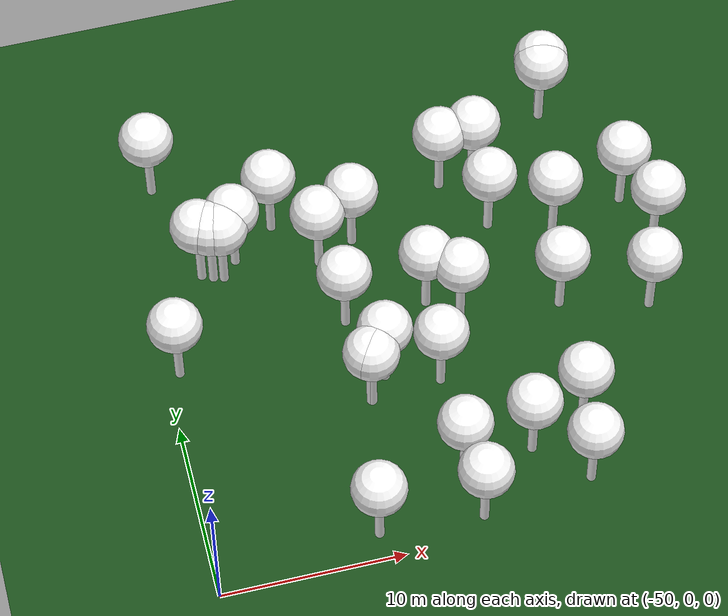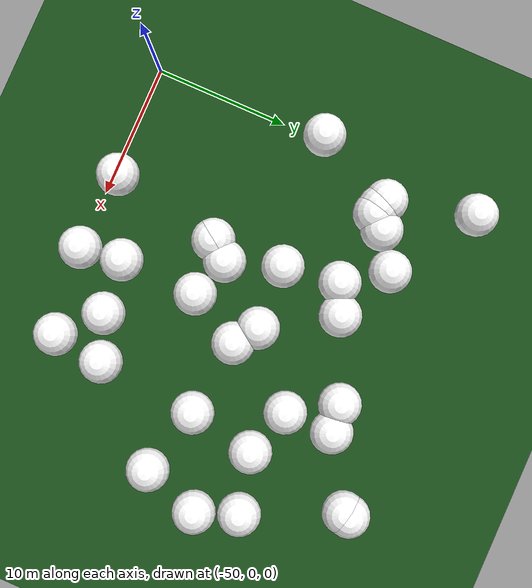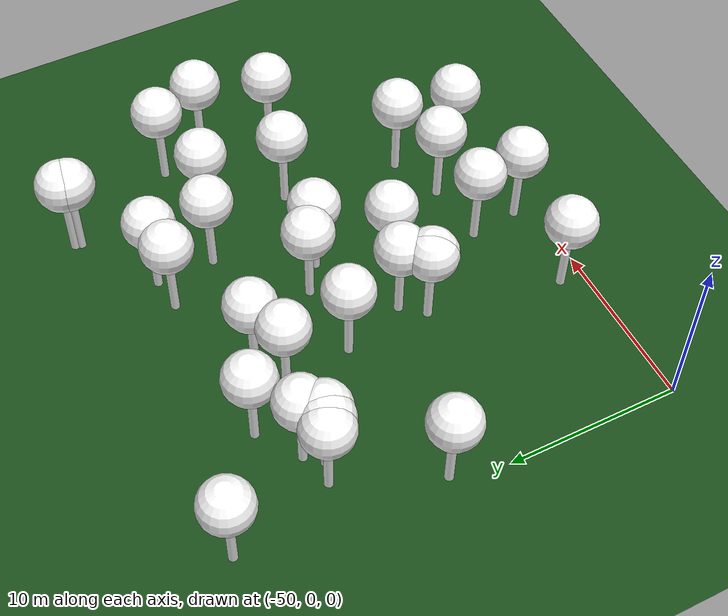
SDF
<sdf version="1.8">
 <world name="forest_world">
  <model name="tree_simple493">
   <static>1</static>
   <link name="link">
    <pose>0 0 0.1 0 -0 0</pose>
    <collision name="collision_trunk">
     <pose>0 0 2 0 -0 0</pose>
     <geometry><cylinder><radius>0.25</radius><length>4</length></cylinder></geometry>
    </collision>
    <collision name="collision_treetop">
     <pose>0 0 5.2 0 -0 0</pose>
     <geometry><sphere><radius>1.5</radius></sphere></geometry>
    </collision>
    <visual name="trunk">
     <pose>0 0 2 0 -0 0</pose>
     <geometry><cylinder><radius>0.25</radius><length>4</length></cylinder></geometry>
     <material>
      <ambient>0.5 0.5 0.5 1</ambient>
      <diffuse>1.0 1.0 1.0 1</diffuse>
      <specular>0.0 0.0 0.0 1</specular>
      <pbr>
       <metal>
        <albedo_map>../worlds/textures/tree_simple_trunk.jpg</albedo_map>
        <metalness>0.0</metalness>
        <roughness>0.8</roughness>
       </metal>
      </pbr>
     </material>
    </visual>
    <visual name="treetop">
     <pose>0 0 5.2 0 -0 0</pose>
     <geometry><sphere><radius>1.5</radius></sphere></geometry>
     <material>
      <ambient>0.5 0.5 0.5 1</ambient>
      <diffuse>1.0 1.0 1.0 1</diffuse>
      <specular>0.0 0.0 0.0 1</specular>
      <pbr>
       <metal>
        <albedo_map>../worlds/textures/tree_simple_treetop.jpg</albedo_map>
        <metalness>0.0</metalness>
        <roughness>0.9</roughness>
       </metal>
      </pbr>
     </material>
    </visual>
   </link>
   <pose>-30.9686104206 18.3944298941 0 0 -0 0</pose>
  </model>
  <model name="tree_simple476">
   <static>1</static>
   <link name="link">
    <pose>0 0 0.1 0 -0 0</pose>
    <collision name="collision_trunk">
     <pose>0 0 2 0 -0 0</pose>
     <geometry><cylinder><radius>0.25</radius><length>4</length></cylinder></geometry>
    </collision>
    <collision name="collision_treetop">
     <pose>0 0 5.2 0 -0 0</pose>
     <geometry><sphere><radius>1.5</radius></sphere></geometry>
    </collision>
    <visual name="trunk">
     <pose>0 0 2 0 -0 0</pose>
     <geometry><cylinder><radius>0.25</radius><length>4</length></cylinder></geometry>
     <material>
      <ambient>0.5 0.5 0.5 1</ambient>
      <diffuse>1.0 1.0 1.0 1</diffuse>
      <specular>0.0 0.0 0.0 1</specular>
      <pbr>
       <metal>
        <albedo_map>../worlds/textures/tree_simple_trunk.jpg</albedo_map>
        <metalness>0.0</metalness>
        <roughness>0.8</roughness>
       </metal>
      </pbr>
     </material>
    </visual>
    <visual name="treetop">
     <pose>0 0 5.2 0 -0 0</pose>
     <geometry><sphere><radius>1.5</radius></sphere></geometry>
     <material>
      <ambient>0.5 0.5 0.5 1</ambient>
      <diffuse>1.0 1.0 1.0 1</diffuse>
      <specular>0.0 0.0 0.0 1</specular>
      <pbr>
       <metal>
        <albedo_map>../worlds/textures/tree_simple_treetop.jpg</albedo_map>
        <metalness>0.0</metalness>
        <roughness>0.9</roughness>
       </metal>
      </pbr>
     </material>
    </visual>
   </link>
   <pose>-40.490555579 18.243153787 0 0 -0 0</pose>
  </model>
  <model name="tree_simple470">
   <static>1</static>
   <link name="link">
    <pose>0 0 0.1 0 -0 0</pose>
    <collision name="collision_trunk">
     <pose>0 0 2 0 -0 0</pose>
     <geometry><cylinder><radius>0.25</radius><length>4</length></cylinder></geometry>
    </collision>
    <collision name="collision_treetop">
     <pose>0 0 5.2 0 -0 0</pose>
     <geometry><sphere><radius>1.5</radius></sphere></geometry>
    </collision>
    <visual name="trunk">
     <pose>0 0 2 0 -0 0</pose>
     <geometry><cylinder><radius>0.25</radius><length>4</length></cylinder></geometry>
     <material>
      <ambient>0.5 0.5 0.5 1</ambient>
      <diffuse>1.0 1.0 1.0 1</diffuse>
      <specular>0.0 0.0 0.0 1</specular>
      <pbr>
       <metal>
        <albedo_map>../worlds/textures/tree_simple_trunk.jpg</albedo_map>
        <metalness>0.0</metalness>
        <roughness>0.8</roughness>
       </metal>
      </pbr>
     </material>
    </visual>
    <visual name="treetop">
     <pose>0 0 5.2 0 -0 0</pose>
     <geometry><sphere><radius>1.5</radius></sphere></geometry>
     <material>
      <ambient>0.5 0.5 0.5 1</ambient>
      <diffuse>1.0 1.0 1.0 1</diffuse>
      <specular>0.0 0.0 0.0 1</specular>
      <pbr>
       <metal>
        <albedo_map>../worlds/textures/tree_simple_treetop.jpg</albedo_map>
        <metalness>0.0</metalness>
        <roughness>0.9</roughness>
       </metal>
      </pbr>
     </material>
    </visual>
   </link>
   <pose>-42.5418923399 21.0598314505 0 0 -0 0</pose>
  </model>
  <model name="tree_simple467">
   <static>1</static>
   <link name="link">
    <pose>0 0 0.1 0 -0 0</pose>
    <collision name="collision_trunk">
     <pose>0 0 2 0 -0 0</pose>
     <geometry><cylinder><radius>0.25</radius><length>4</length></cylinder></geometry>
    </collision>
    <collision name="collision_treetop">
     <pose>0 0 5.2 0 -0 0</pose>
     <geometry><sphere><radius>1.5</radius></sphere></geometry>
    </collision>
    <visual name="trunk">
     <pose>0 0 2 0 -0 0</pose>
     <geometry><cylinder><radius>0.25</radius><length>4</length></cylinder></geometry>
     <material>
      <ambient>0.5 0.5 0.5 1</ambient>
      <diffuse>1.0 1.0 1.0 1</diffuse>
      <specular>0.0 0.0 0.0 1</specular>
      <pbr>
       <metal>
        <albedo_map>../worlds/textures/tree_simple_trunk.jpg</albedo_map>
        <metalness>0.0</metalness>
        <roughness>0.8</roughness>
       </metal>
      </pbr>
     </material>
    </visual>
    <visual name="treetop">
     <pose>0 0 5.2 0 -0 0</pose>
     <geometry><sphere><radius>1.5</radius></sphere></geometry>
     <material>
      <ambient>0.5 0.5 0.5 1</ambient>
      <diffuse>1.0 1.0 1.0 1</diffuse>
      <specular>0.0 0.0 0.0 1</specular>
      <pbr>
       <metal>
        <albedo_map>../worlds/textures/tree_simple_treetop.jpg</albedo_map>
        <metalness>0.0</metalness>
        <roughness>0.9</roughness>
       </metal>
      </pbr>
     </material>
    </visual>
   </link>
   <pose>-38.4435588212 19.1731926836 0 0 -0 0</pose>
  </model>
  <model name="tree_simple455">
   <static>1</static>
   <link name="link">
    <pose>0 0 0.1 0 -0 0</pose>
    <collision name="collision_trunk">
     <pose>0 0 2 0 -0 0</pose>
     <geometry><cylinder><radius>0.25</radius><length>4</length></cylinder></geometry>
    </collision>
    <collision name="collision_treetop">
     <pose>0 0 5.2 0 -0 0</pose>
     <geometry><sphere><radius>1.5</radius></sphere></geometry>
    </collision>
    <visual name="trunk">
     <pose>0 0 2 0 -0 0</pose>
     <geometry><cylinder><radius>0.25</radius><length>4</length></cylinder></geometry>
     <material>
      <ambient>0.5 0.5 0.5 1</ambient>
      <diffuse>1.0 1.0 1.0 1</diffuse>
      <specular>0.0 0.0 0.0 1</specular>
      <pbr>
       <metal>
        <albedo_map>../worlds/textures/tree_simple_trunk.jpg</albedo_map>
        <metalness>0.0</metalness>
        <roughness>0.8</roughness>
       </metal>
      </pbr>
     </material>
    </visual>
    <visual name="treetop">
     <pose>0 0 5.2 0 -0 0</pose>
     <geometry><sphere><radius>1.5</radius></sphere></geometry>
     <material>
      <ambient>0.5 0.5 0.5 1</ambient>
      <diffuse>1.0 1.0 1.0 1</diffuse>
      <specular>0.0 0.0 0.0 1</specular>
      <pbr>
       <metal>
        <albedo_map>../worlds/textures/tree_simple_treetop.jpg</albedo_map>
        <metalness>0.0</metalness>
        <roughness>0.9</roughness>
       </metal>
      </pbr>
     </material>
    </visual>
   </link>
   <pose>-32.1346913749 4.45623468988 0 0 -0 0</pose>
  </model>
  <model name="tree_simple444">
   <static>1</static>
   <link name="link">
    <pose>0 0 0.1 0 -0 0</pose>
    <collision name="collision_trunk">
     <pose>0 0 2 0 -0 0</pose>
     <geometry><cylinder><radius>0.25</radius><length>4</length></cylinder></geometry>
    </collision>
    <collision name="collision_treetop">
     <pose>0 0 5.2 0 -0 0</pose>
     <geometry><sphere><radius>1.5</radius></sphere></geometry>
    </collision>
    <visual name="trunk">
     <pose>0 0 2 0 -0 0</pose>
     <geometry><cylinder><radius>0.25</radius><length>4</length></cylinder></geometry>
     <material>
      <ambient>0.5 0.5 0.5 1</ambient>
      <diffuse>1.0 1.0 1.0 1</diffuse>
      <specular>0.0 0.0 0.0 1</specular>
      <pbr>
       <metal>
        <albedo_map>../worlds/textures/tree_simple_trunk.jpg</albedo_map>
        <metalness>0.0</metalness>
        <roughness>0.8</roughness>
       </metal>
      </pbr>
     </material>
    </visual>
    <visual name="treetop">
     <pose>0 0 5.2 0 -0 0</pose>
     <geometry><sphere><radius>1.5</radius></sphere></geometry>
     <material>
      <ambient>0.5 0.5 0.5 1</ambient>
      <diffuse>1.0 1.0 1.0 1</diffuse>
      <specular>0.0 0.0 0.0 1</specular>
      <pbr>
       <metal>
        <albedo_map>../worlds/textures/tree_simple_treetop.jpg</albedo_map>
        <metalness>0.0</metalness>
        <roughness>0.9</roughness>
       </metal>
      </pbr>
     </material>
    </visual>
   </link>
   <pose>-23.7375888222 11.4825776361 0 0 -0 0</pose>
  </model>
  <model name="tree_simple440">
   <static>1</static>
   <link name="link">
    <pose>0 0 0.1 0 -0 0</pose>
    <collision name="collision_trunk">
     <pose>0 0 2 0 -0 0</pose>
     <geometry><cylinder><radius>0.25</radius><length>4</length></cylinder></geometry>
    </collision>
    <collision name="collision_treetop">
     <pose>0 0 5.2 0 -0 0</pose>
     <geometry><sphere><radius>1.5</radius></sphere></geometry>
    </collision>
    <visual name="trunk">
     <pose>0 0 2 0 -0 0</pose>
     <geometry><cylinder><radius>0.25</radius><length>4</length></cylinder></geometry>
     <material>
      <ambient>0.5 0.5 0.5 1</ambient>
      <diffuse>1.0 1.0 1.0 1</diffuse>
      <specular>0.0 0.0 0.0 1</specular>
      <pbr>
       <metal>
        <albedo_map>../worlds/textures/tree_simple_trunk.jpg</albedo_map>
        <metalness>0.0</metalness>
        <roughness>0.8</roughness>
       </metal>
      </pbr>
     </material>
    </visual>
    <visual name="treetop">
     <pose>0 0 5.2 0 -0 0</pose>
     <geometry><sphere><radius>1.5</radius></sphere></geometry>
     <material>
      <ambient>0.5 0.5 0.5 1</ambient>
      <diffuse>1.0 1.0 1.0 1</diffuse>
      <specular>0.0 0.0 0.0 1</specular>
      <pbr>
       <metal>
        <albedo_map>../worlds/textures/tree_simple_treetop.jpg</albedo_map>
        <metalness>0.0</metalness>
        <roughness>0.9</roughness>
       </metal>
      </pbr>
     </material>
    </visual>
   </link>
   <pose>-31.0139863597 21.7755311208 0 0 -0 0</pose>
  </model>
  <model name="tree_simple437">
   <static>1</static>
   <link name="link">
    <pose>0 0 0.1 0 -0 0</pose>
    <collision name="collision_trunk">
     <pose>0 0 2 0 -0 0</pose>
     <geometry><cylinder><radius>0.25</radius><length>4</length></cylinder></geometry>
    </collision>
    <collision name="collision_treetop">
     <pose>0 0 5.2 0 -0 0</pose>
     <geometry><sphere><radius>1.5</radius></sphere></geometry>
    </collision>
    <visual name="trunk">
     <pose>0 0 2 0 -0 0</pose>
     <geometry><cylinder><radius>0.25</radius><length>4</length></cylinder></geometry>
     <material>
      <ambient>0.5 0.5 0.5 1</ambient>
      <diffuse>1.0 1.0 1.0 1</diffuse>
      <specular>0.0 0.0 0.0 1</specular>
      <pbr>
       <metal>
        <albedo_map>../worlds/textures/tree_simple_trunk.jpg</albedo_map>
        <metalness>0.0</metalness>
        <roughness>0.8</roughness>
       </metal>
      </pbr>
     </material>
    </visual>
    <visual name="treetop">
     <pose>0 0 5.2 0 -0 0</pose>
     <geometry><sphere><radius>1.5</radius></sphere></geometry>
     <material>
      <ambient>0.5 0.5 0.5 1</ambient>
      <diffuse>1.0 1.0 1.0 1</diffuse>
      <specular>0.0 0.0 0.0 1</specular>
      <pbr>
       <metal>
        <albedo_map>../worlds/textures/tree_simple_treetop.jpg</albedo_map>
        <metalness>0.0</metalness>
        <roughness>0.9</roughness>
       </metal>
      </pbr>
     </material>
    </visual>
   </link>
   <pose>-39.7170299969 9.24665194356 0 0 -0 0</pose>
  </model>
  <model name="tree_simple420">
   <static>1</static>
   <link name="link">
    <pose>0 0 0.1 0 -0 0</pose>
    <collision name="collision_trunk">
     <pose>0 0 2 0 -0 0</pose>
     <geometry><cylinder><radius>0.25</radius><length>4</length></cylinder></geometry>
    </collision>
    <collision name="collision_treetop">
     <pose>0 0 5.2 0 -0 0</pose>
     <geometry><sphere><radius>1.5</radius></sphere></geometry>
    </collision>
    <visual name="trunk">
     <pose>0 0 2 0 -0 0</pose>
     <geometry><cylinder><radius>0.25</radius><length>4</length></cylinder></geometry>
     <material>
      <ambient>0.5 0.5 0.5 1</ambient>
      <diffuse>1.0 1.0 1.0 1</diffuse>
      <specular>0.0 0.0 0.0 1</specular>
      <pbr>
       <metal>
        <albedo_map>../worlds/textures/tree_simple_trunk.jpg</albedo_map>
        <metalness>0.0</metalness>
        <roughness>0.8</roughness>
       </metal>
      </pbr>
     </material>
    </visual>
    <visual name="treetop">
     <pose>0 0 5.2 0 -0 0</pose>
     <geometry><sphere><radius>1.5</radius></sphere></geometry>
     <material>
      <ambient>0.5 0.5 0.5 1</ambient>
      <diffuse>1.0 1.0 1.0 1</diffuse>
      <specular>0.0 0.0 0.0 1</specular>
      <pbr>
       <metal>
        <albedo_map>../worlds/textures/tree_simple_treetop.jpg</albedo_map>
        <metalness>0.0</metalness>
        <roughness>0.9</roughness>
       </metal>
      </pbr>
     </material>
    </visual>
   </link>
   <pose>-46.8738530937 18.9140158148 0 0 -0 0</pose>
  </model>
  <model name="tree_simple383">
   <static>1</static>
   <link name="link">
    <pose>0 0 0.1 0 -0 0</pose>
    <collision name="collision_trunk">
     <pose>0 0 2 0 -0 0</pose>
     <geometry><cylinder><radius>0.25</radius><length>4</length></cylinder></geometry>
    </collision>
    <collision name="collision_treetop">
     <pose>0 0 5.2 0 -0 0</pose>
     <geometry><sphere><radius>1.5</radius></sphere></geometry>
    </collision>
    <visual name="trunk">
     <pose>0 0 2 0 -0 0</pose>
     <geometry><cylinder><radius>0.25</radius><length>4</length></cylinder></geometry>
     <material>
      <ambient>0.5 0.5 0.5 1</ambient>
      <diffuse>1.0 1.0 1.0 1</diffuse>
      <specular>0.0 0.0 0.0 1</specular>
      <pbr>
       <metal>
        <albedo_map>../worlds/textures/tree_simple_trunk.jpg</albedo_map>
        <metalness>0.0</metalness>
        <roughness>0.8</roughness>
       </metal>
      </pbr>
     </material>
    </visual>
    <visual name="treetop">
     <pose>0 0 5.2 0 -0 0</pose>
     <geometry><sphere><radius>1.5</radius></sphere></geometry>
     <material>
      <ambient>0.5 0.5 0.5 1</ambient>
      <diffuse>1.0 1.0 1.0 1</diffuse>
      <specular>0.0 0.0 0.0 1</specular>
      <pbr>
       <metal>
        <albedo_map>../worlds/textures/tree_simple_treetop.jpg</albedo_map>
        <metalness>0.0</metalness>
        <roughness>0.9</roughness>
       </metal>
      </pbr>
     </material>
    </visual>
   </link>
   <pose>-39.6589333601 9.20891740709 0 0 -0 0</pose>
  </model>
  <model name="tree_simple338">
   <static>1</static>
   <link name="link">
    <pose>0 0 0.1 0 -0 0</pose>
    <collision name="collision_trunk">
     <pose>0 0 2 0 -0 0</pose>
     <geometry><cylinder><radius>0.25</radius><length>4</length></cylinder></geometry>
    </collision>
    <collision name="collision_treetop">
     <pose>0 0 5.2 0 -0 0</pose>
     <geometry><sphere><radius>1.5</radius></sphere></geometry>
    </collision>
    <visual name="trunk">
     <pose>0 0 2 0 -0 0</pose>
     <geometry><cylinder><radius>0.25</radius><length>4</length></cylinder></geometry>
     <material>
      <ambient>0.5 0.5 0.5 1</ambient>
      <diffuse>1.0 1.0 1.0 1</diffuse>
      <specular>0.0 0.0 0.0 1</specular>
      <pbr>
       <metal>
        <albedo_map>../worlds/textures/tree_simple_trunk.jpg</albedo_map>
        <metalness>0.0</metalness>
        <roughness>0.8</roughness>
       </metal>
      </pbr>
     </material>
    </visual>
    <visual name="treetop">
     <pose>0 0 5.2 0 -0 0</pose>
     <geometry><sphere><radius>1.5</radius></sphere></geometry>
     <material>
      <ambient>0.5 0.5 0.5 1</ambient>
      <diffuse>1.0 1.0 1.0 1</diffuse>
      <specular>0.0 0.0 0.0 1</specular>
      <pbr>
       <metal>
        <albedo_map>../worlds/textures/tree_simple_treetop.jpg</albedo_map>
        <metalness>0.0</metalness>
        <roughness>0.9</roughness>
       </metal>
      </pbr>
     </material>
    </visual>
   </link>
   <pose>-22.4236352143 15.4465495723 0 0 -0 0</pose>
  </model>
  <model name="tree_simple333">
   <static>1</static>
   <link name="link">
    <pose>0 0 0.1 0 -0 0</pose>
    <collision name="collision_trunk">
     <pose>0 0 2 0 -0 0</pose>
     <geometry><cylinder><radius>0.25</radius><length>4</length></cylinder></geometry>
    </collision>
    <collision name="collision_treetop">
     <pose>0 0 5.2 0 -0 0</pose>
     <geometry><sphere><radius>1.5</radius></sphere></geometry>
    </collision>
    <visual name="trunk">
     <pose>0 0 2 0 -0 0</pose>
     <geometry><cylinder><radius>0.25</radius><length>4</length></cylinder></geometry>
     <material>
      <ambient>0.5 0.5 0.5 1</ambient>
      <diffuse>1.0 1.0 1.0 1</diffuse>
      <specular>0.0 0.0 0.0 1</specular>
      <pbr>
       <metal>
        <albedo_map>../worlds/textures/tree_simple_trunk.jpg</albedo_map>
        <metalness>0.0</metalness>
        <roughness>0.8</roughness>
       </metal>
      </pbr>
     </material>
    </visual>
    <visual name="treetop">
     <pose>0 0 5.2 0 -0 0</pose>
     <geometry><sphere><radius>1.5</radius></sphere></geometry>
     <material>
      <ambient>0.5 0.5 0.5 1</ambient>
      <diffuse>1.0 1.0 1.0 1</diffuse>
      <specular>0.0 0.0 0.0 1</specular>
      <pbr>
       <metal>
        <albedo_map>../worlds/textures/tree_simple_treetop.jpg</albedo_map>
        <metalness>0.0</metalness>
        <roughness>0.9</roughness>
       </metal>
      </pbr>
     </material>
    </visual>
   </link>
   <pose>-39.9457212117 14.2708629915 0 0 -0 0</pose>
  </model>
  <model name="tree_simple289">
   <static>1</static>
   <link name="link">
    <pose>0 0 0.1 0 -0 0</pose>
    <collision name="collision_trunk">
     <pose>0 0 2 0 -0 0</pose>
     <geometry><cylinder><radius>0.25</radius><length>4</length></cylinder></geometry>
    </collision>
    <collision name="collision_treetop">
     <pose>0 0 5.2 0 -0 0</pose>
     <geometry><sphere><radius>1.5</radius></sphere></geometry>
    </collision>
    <visual name="trunk">
     <pose>0 0 2 0 -0 0</pose>
     <geometry><cylinder><radius>0.25</radius><length>4</length></cylinder></geometry>
     <material>
      <ambient>0.5 0.5 0.5 1</ambient>
      <diffuse>1.0 1.0 1.0 1</diffuse>
      <specular>0.0 0.0 0.0 1</specular>
      <pbr>
       <metal>
        <albedo_map>../worlds/textures/tree_simple_trunk.jpg</albedo_map>
        <metalness>0.0</metalness>
        <roughness>0.8</roughness>
       </metal>
      </pbr>
     </material>
    </visual>
    <visual name="treetop">
     <pose>0 0 5.2 0 -0 0</pose>
     <geometry><sphere><radius>1.5</radius></sphere></geometry>
     <material>
      <ambient>0.5 0.5 0.5 1</ambient>
      <diffuse>1.0 1.0 1.0 1</diffuse>
      <specular>0.0 0.0 0.0 1</specular>
      <pbr>
       <metal>
        <albedo_map>../worlds/textures/tree_simple_treetop.jpg</albedo_map>
        <metalness>0.0</metalness>
        <roughness>0.9</roughness>
       </metal>
      </pbr>
     </material>
    </visual>
   </link>
   <pose>-35.9302757768 4.10324936235 0 0 -0 0</pose>
  </model>
  <model name="tree_simple286">
   <static>1</static>
   <link name="link">
    <pose>0 0 0.1 0 -0 0</pose>
    <collision name="collision_trunk">
     <pose>0 0 2 0 -0 0</pose>
     <geometry><cylinder><radius>0.25</radius><length>4</length></cylinder></geometry>
    </collision>
    <collision name="collision_treetop">
     <pose>0 0 5.2 0 -0 0</pose>
     <geometry><sphere><radius>1.5</radius></sphere></geometry>
    </collision>
    <visual name="trunk">
     <pose>0 0 2 0 -0 0</pose>
     <geometry><cylinder><radius>0.25</radius><length>4</length></cylinder></geometry>
     <material>
      <ambient>0.5 0.5 0.5 1</ambient>
      <diffuse>1.0 1.0 1.0 1</diffuse>
      <specular>0.0 0.0 0.0 1</specular>
      <pbr>
       <metal>
        <albedo_map>../worlds/textures/tree_simple_trunk.jpg</albedo_map>
        <metalness>0.0</metalness>
        <roughness>0.8</roughness>
       </metal>
      </pbr>
     </material>
    </visual>
    <visual name="treetop">
     <pose>0 0 5.2 0 -0 0</pose>
     <geometry><sphere><radius>1.5</radius></sphere></geometry>
     <material>
      <ambient>0.5 0.5 0.5 1</ambient>
      <diffuse>1.0 1.0 1.0 1</diffuse>
      <specular>0.0 0.0 0.0 1</specular>
      <pbr>
       <metal>
        <albedo_map>../worlds/textures/tree_simple_treetop.jpg</albedo_map>
        <metalness>0.0</metalness>
        <roughness>0.9</roughness>
       </metal>
      </pbr>
     </material>
    </visual>
   </link>
   <pose>-48.4343960976 24.9011596552 0 0 -0 0</pose>
  </model>
  <model name="tree_simple252">
   <static>1</static>
   <link name="link">
    <pose>0 0 0.1 0 -0 0</pose>
    <collision name="collision_trunk">
     <pose>0 0 2 0 -0 0</pose>
     <geometry><cylinder><radius>0.25</radius><length>4</length></cylinder></geometry>
    </collision>
    <collision name="collision_treetop">
     <pose>0 0 5.2 0 -0 0</pose>
     <geometry><sphere><radius>1.5</radius></sphere></geometry>
    </collision>
    <visual name="trunk">
     <pose>0 0 2 0 -0 0</pose>
     <geometry><cylinder><radius>0.25</radius><length>4</length></cylinder></geometry>
     <material>
      <ambient>0.5 0.5 0.5 1</ambient>
      <diffuse>1.0 1.0 1.0 1</diffuse>
      <specular>0.0 0.0 0.0 1</specular>
      <pbr>
       <metal>
        <albedo_map>../worlds/textures/tree_simple_trunk.jpg</albedo_map>
        <metalness>0.0</metalness>
        <roughness>0.8</roughness>
       </metal>
      </pbr>
     </material>
    </visual>
    <visual name="treetop">
     <pose>0 0 5.2 0 -0 0</pose>
     <geometry><sphere><radius>1.5</radius></sphere></geometry>
     <material>
      <ambient>0.5 0.5 0.5 1</ambient>
      <diffuse>1.0 1.0 1.0 1</diffuse>
      <specular>0.0 0.0 0.0 1</specular>
      <pbr>
       <metal>
        <albedo_map>../worlds/textures/tree_simple_treetop.jpg</albedo_map>
        <metalness>0.0</metalness>
        <roughness>0.9</roughness>
       </metal>
      </pbr>
     </material>
    </visual>
   </link>
   <pose>-49.2857495086 13.2768548842 0 0 -0 0</pose>
  </model>
  <model name="tree_simple231">
   <static>1</static>
   <link name="link">
    <pose>0 0 0.1 0 -0 0</pose>
    <collision name="collision_trunk">
     <pose>0 0 2 0 -0 0</pose>
     <geometry><cylinder><radius>0.25</radius><length>4</length></cylinder></geometry>
    </collision>
    <collision name="collision_treetop">
     <pose>0 0 5.2 0 -0 0</pose>
     <geometry><sphere><radius>1.5</radius></sphere></geometry>
    </collision>
    <visual name="trunk">
     <pose>0 0 2 0 -0 0</pose>
     <geometry><cylinder><radius>0.25</radius><length>4</length></cylinder></geometry>
     <material>
      <ambient>0.5 0.5 0.5 1</ambient>
      <diffuse>1.0 1.0 1.0 1</diffuse>
      <specular>0.0 0.0 0.0 1</specular>
      <pbr>
       <metal>
        <albedo_map>../worlds/textures/tree_simple_trunk.jpg</albedo_map>
        <metalness>0.0</metalness>
        <roughness>0.8</roughness>
       </metal>
      </pbr>
     </material>
    </visual>
    <visual name="treetop">
     <pose>0 0 5.2 0 -0 0</pose>
     <geometry><sphere><radius>1.5</radius></sphere></geometry>
     <material>
      <ambient>0.5 0.5 0.5 1</ambient>
      <diffuse>1.0 1.0 1.0 1</diffuse>
      <specular>0.0 0.0 0.0 1</specular>
      <pbr>
       <metal>
        <albedo_map>../worlds/textures/tree_simple_treetop.jpg</albedo_map>
        <metalness>0.0</metalness>
        <roughness>0.9</roughness>
       </metal>
      </pbr>
     </material>
    </visual>
   </link>
   <pose>-35.8338732543 9.59486776234 0 0 -0 0</pose>
  </model>
  <model name="tree_simple228">
   <static>1</static>
   <link name="link">
    <pose>0 0 0.1 0 -0 0</pose>
    <collision name="collision_trunk">
     <pose>0 0 2 0 -0 0</pose>
     <geometry><cylinder><radius>0.25</radius><length>4</length></cylinder></geometry>
    </collision>
    <collision name="collision_treetop">
     <pose>0 0 5.2 0 -0 0</pose>
     <geometry><sphere><radius>1.5</radius></sphere></geometry>
    </collision>
    <visual name="trunk">
     <pose>0 0 2 0 -0 0</pose>
     <geometry><cylinder><radius>0.25</radius><length>4</length></cylinder></geometry>
     <material>
      <ambient>0.5 0.5 0.5 1</ambient>
      <diffuse>1.0 1.0 1.0 1</diffuse>
      <specular>0.0 0.0 0.0 1</specular>
      <pbr>
       <metal>
        <albedo_map>../worlds/textures/tree_simple_trunk.jpg</albedo_map>
        <metalness>0.0</metalness>
        <roughness>0.8</roughness>
       </metal>
      </pbr>
     </material>
    </visual>
    <visual name="treetop">
     <pose>0 0 5.2 0 -0 0</pose>
     <geometry><sphere><radius>1.5</radius></sphere></geometry>
     <material>
      <ambient>0.5 0.5 0.5 1</ambient>
      <diffuse>1.0 1.0 1.0 1</diffuse>
      <specular>0.0 0.0 0.0 1</specular>
      <pbr>
       <metal>
        <albedo_map>../worlds/textures/tree_simple_treetop.jpg</albedo_map>
        <metalness>0.0</metalness>
        <roughness>0.9</roughness>
       </metal>
      </pbr>
     </material>
    </visual>
   </link>
   <pose>-28.4416918888 12.679152397 0 0 -0 0</pose>
  </model>
  <model name="tree_simple218">
   <static>1</static>
   <link name="link">
    <pose>0 0 0.1 0 -0 0</pose>
    <collision name="collision_trunk">
     <pose>0 0 2 0 -0 0</pose>
     <geometry><cylinder><radius>0.25</radius><length>4</length></cylinder></geometry>
    </collision>
    <collision name="collision_treetop">
     <pose>0 0 5.2 0 -0 0</pose>
     <geometry><sphere><radius>1.5</radius></sphere></geometry>
    </collision>
    <visual name="trunk">
     <pose>0 0 2 0 -0 0</pose>
     <geometry><cylinder><radius>0.25</radius><length>4</length></cylinder></geometry>
     <material>
      <ambient>0.5 0.5 0.5 1</ambient>
      <diffuse>1.0 1.0 1.0 1</diffuse>
      <specular>0.0 0.0 0.0 1</specular>
      <pbr>
       <metal>
        <albedo_map>../worlds/textures/tree_simple_trunk.jpg</albedo_map>
        <metalness>0.0</metalness>
        <roughness>0.8</roughness>
       </metal>
      </pbr>
     </material>
    </visual>
    <visual name="treetop">
     <pose>0 0 5.2 0 -0 0</pose>
     <geometry><sphere><radius>1.5</radius></sphere></geometry>
     <material>
      <ambient>0.5 0.5 0.5 1</ambient>
      <diffuse>1.0 1.0 1.0 1</diffuse>
      <specular>0.0 0.0 0.0 1</specular>
      <pbr>
       <metal>
        <albedo_map>../worlds/textures/tree_simple_treetop.jpg</albedo_map>
        <metalness>0.0</metalness>
        <roughness>0.9</roughness>
       </metal>
      </pbr>
     </material>
    </visual>
   </link>
   <pose>-35.4441673734 14.4296379782 0 0 -0 0</pose>
  </model>
  <model name="tree_simple209">
   <static>1</static>
   <link name="link">
    <pose>0 0 0.1 0 -0 0</pose>
    <collision name="collision_trunk">
     <pose>0 0 2 0 -0 0</pose>
     <geometry><cylinder><radius>0.25</radius><length>4</length></cylinder></geometry>
    </collision>
    <collision name="collision_treetop">
     <pose>0 0 5.2 0 -0 0</pose>
     <geometry><sphere><radius>1.5</radius></sphere></geometry>
    </collision>
    <visual name="trunk">
     <pose>0 0 2 0 -0 0</pose>
     <geometry><cylinder><radius>0.25</radius><length>4</length></cylinder></geometry>
     <material>
      <ambient>0.5 0.5 0.5 1</ambient>
      <diffuse>1.0 1.0 1.0 1</diffuse>
      <specular>0.0 0.0 0.0 1</specular>
      <pbr>
       <metal>
        <albedo_map>../worlds/textures/tree_simple_trunk.jpg</albedo_map>
        <metalness>0.0</metalness>
        <roughness>0.8</roughness>
       </metal>
      </pbr>
     </material>
    </visual>
    <visual name="treetop">
     <pose>0 0 5.2 0 -0 0</pose>
     <geometry><sphere><radius>1.5</radius></sphere></geometry>
     <material>
      <ambient>0.5 0.5 0.5 1</ambient>
      <diffuse>1.0 1.0 1.0 1</diffuse>
      <specular>0.0 0.0 0.0 1</specular>
      <pbr>
       <metal>
        <albedo_map>../worlds/textures/tree_simple_treetop.jpg</albedo_map>
        <metalness>0.0</metalness>
        <roughness>0.9</roughness>
       </metal>
      </pbr>
     </material>
    </visual>
   </link>
   <pose>-33.8233046725 13.2827932197 0 0 -0 0</pose>
  </model>
  <model name="tree_simple199">
   <static>1</static>
   <link name="link">
    <pose>0 0 0.1 0 -0 0</pose>
    <collision name="collision_trunk">
     <pose>0 0 2 0 -0 0</pose>
     <geometry><cylinder><radius>0.25</radius><length>4</length></cylinder></geometry>
    </collision>
    <collision name="collision_treetop">
     <pose>0 0 5.2 0 -0 0</pose>
     <geometry><sphere><radius>1.5</radius></sphere></geometry>
    </collision>
    <visual name="trunk">
     <pose>0 0 2 0 -0 0</pose>
     <geometry><cylinder><radius>0.25</radius><length>4</length></cylinder></geometry>
     <material>
      <ambient>0.5 0.5 0.5 1</ambient>
      <diffuse>1.0 1.0 1.0 1</diffuse>
      <specular>0.0 0.0 0.0 1</specular>
      <pbr>
       <metal>
        <albedo_map>../worlds/textures/tree_simple_trunk.jpg</albedo_map>
        <metalness>0.0</metalness>
        <roughness>0.8</roughness>
       </metal>
      </pbr>
     </material>
    </visual>
    <visual name="treetop">
     <pose>0 0 5.2 0 -0 0</pose>
     <geometry><sphere><radius>1.5</radius></sphere></geometry>
     <material>
      <ambient>0.5 0.5 0.5 1</ambient>
      <diffuse>1.0 1.0 1.0 1</diffuse>
      <specular>0.0 0.0 0.0 1</specular>
      <pbr>
       <metal>
        <albedo_map>../worlds/textures/tree_simple_treetop.jpg</albedo_map>
        <metalness>0.0</metalness>
        <roughness>0.9</roughness>
       </metal>
      </pbr>
     </material>
    </visual>
   </link>
   <pose>-38.6601694544 10.5136228042 0 0 -0 0</pose>
  </model>
  <model name="tree_simple186">
   <static>1</static>
   <link name="link">
    <pose>0 0 0.1 0 -0 0</pose>
    <collision name="collision_trunk">
     <pose>0 0 2 0 -0 0</pose>
     <geometry><cylinder><radius>0.25</radius><length>4</length></cylinder></geometry>
    </collision>
    <collision name="collision_treetop">
     <pose>0 0 5.2 0 -0 0</pose>
     <geometry><sphere><radius>1.5</radius></sphere></geometry>
    </collision>
    <visual name="trunk">
     <pose>0 0 2 0 -0 0</pose>
     <geometry><cylinder><radius>0.25</radius><length>4</length></cylinder></geometry>
     <material>
      <ambient>0.5 0.5 0.5 1</ambient>
      <diffuse>1.0 1.0 1.0 1</diffuse>
      <specular>0.0 0.0 0.0 1</specular>
      <pbr>
       <metal>
        <albedo_map>../worlds/textures/tree_simple_trunk.jpg</albedo_map>
        <metalness>0.0</metalness>
        <roughness>0.8</roughness>
       </metal>
      </pbr>
     </material>
    </visual>
    <visual name="treetop">
     <pose>0 0 5.2 0 -0 0</pose>
     <geometry><sphere><radius>1.5</radius></sphere></geometry>
     <material>
      <ambient>0.5 0.5 0.5 1</ambient>
      <diffuse>1.0 1.0 1.0 1</diffuse>
      <specular>0.0 0.0 0.0 1</specular>
      <pbr>
       <metal>
        <albedo_map>../worlds/textures/tree_simple_treetop.jpg</albedo_map>
        <metalness>0.0</metalness>
        <roughness>0.9</roughness>
       </metal>
      </pbr>
     </material>
    </visual>
   </link>
   <pose>-26.4394079644 24.666728782 0 0 -0 0</pose>
  </model>
  <model name="tree_simple174">
   <static>1</static>
   <link name="link">
    <pose>0 0 0.1 0 -0 0</pose>
    <collision name="collision_trunk">
     <pose>0 0 2 0 -0 0</pose>
     <geometry><cylinder><radius>0.25</radius><length>4</length></cylinder></geometry>
    </collision>
    <collision name="collision_treetop">
     <pose>0 0 5.2 0 -0 0</pose>
     <geometry><sphere><radius>1.5</radius></sphere></geometry>
    </collision>
    <visual name="trunk">
     <pose>0 0 2 0 -0 0</pose>
     <geometry><cylinder><radius>0.25</radius><length>4</length></cylinder></geometry>
     <material>
      <ambient>0.5 0.5 0.5 1</ambient>
      <diffuse>1.0 1.0 1.0 1</diffuse>
      <specular>0.0 0.0 0.0 1</specular>
      <pbr>
       <metal>
        <albedo_map>../worlds/textures/tree_simple_trunk.jpg</albedo_map>
        <metalness>0.0</metalness>
        <roughness>0.8</roughness>
       </metal>
      </pbr>
     </material>
    </visual>
    <visual name="treetop">
     <pose>0 0 5.2 0 -0 0</pose>
     <geometry><sphere><radius>1.5</radius></sphere></geometry>
     <material>
      <ambient>0.5 0.5 0.5 1</ambient>
      <diffuse>1.0 1.0 1.0 1</diffuse>
      <specular>0.0 0.0 0.0 1</specular>
      <pbr>
       <metal>
        <albedo_map>../worlds/textures/tree_simple_treetop.jpg</albedo_map>
        <metalness>0.0</metalness>
        <roughness>0.9</roughness>
       </metal>
      </pbr>
     </material>
    </visual>
   </link>
   <pose>-26.363349587 25.0273342245 0 0 -0 0</pose>
  </model>
  <model name="tree_simple162">
   <static>1</static>
   <link name="link">
    <pose>0 0 0.1 0 -0 0</pose>
    <collision name="collision_trunk">
     <pose>0 0 2 0 -0 0</pose>
     <geometry><cylinder><radius>0.25</radius><length>4</length></cylinder></geometry>
    </collision>
    <collision name="collision_treetop">
     <pose>0 0 5.2 0 -0 0</pose>
     <geometry><sphere><radius>1.5</radius></sphere></geometry>
    </collision>
    <visual name="trunk">
     <pose>0 0 2 0 -0 0</pose>
     <geometry><cylinder><radius>0.25</radius><length>4</length></cylinder></geometry>
     <material>
      <ambient>0.5 0.5 0.5 1</ambient>
      <diffuse>1.0 1.0 1.0 1</diffuse>
      <specular>0.0 0.0 0.0 1</specular>
      <pbr>
       <metal>
        <albedo_map>../worlds/textures/tree_simple_trunk.jpg</albedo_map>
        <metalness>0.0</metalness>
        <roughness>0.8</roughness>
       </metal>
      </pbr>
     </material>
    </visual>
    <visual name="treetop">
     <pose>0 0 5.2 0 -0 0</pose>
     <geometry><sphere><radius>1.5</radius></sphere></geometry>
     <material>
      <ambient>0.5 0.5 0.5 1</ambient>
      <diffuse>1.0 1.0 1.0 1</diffuse>
      <specular>0.0 0.0 0.0 1</specular>
      <pbr>
       <metal>
        <albedo_map>../worlds/textures/tree_simple_treetop.jpg</albedo_map>
        <metalness>0.0</metalness>
        <roughness>0.9</roughness>
       </metal>
      </pbr>
     </material>
    </visual>
   </link>
   <pose>-29.0785466271 5.63251358266 0 0 -0 0</pose>
  </model>
  <model name="tree_simple135">
   <static>1</static>
   <link name="link">
    <pose>0 0 0.1 0 -0 0</pose>
    <collision name="collision_trunk">
     <pose>0 0 2 0 -0 0</pose>
     <geometry><cylinder><radius>0.25</radius><length>4</length></cylinder></geometry>
    </collision>
    <collision name="collision_treetop">
     <pose>0 0 5.2 0 -0 0</pose>
     <geometry><sphere><radius>1.5</radius></sphere></geometry>
    </collision>
    <visual name="trunk">
     <pose>0 0 2 0 -0 0</pose>
     <geometry><cylinder><radius>0.25</radius><length>4</length></cylinder></geometry>
     <material>
      <ambient>0.5 0.5 0.5 1</ambient>
      <diffuse>1.0 1.0 1.0 1</diffuse>
      <specular>0.0 0.0 0.0 1</specular>
      <pbr>
       <metal>
        <albedo_map>../worlds/textures/tree_simple_trunk.jpg</albedo_map>
        <metalness>0.0</metalness>
        <roughness>0.8</roughness>
       </metal>
      </pbr>
     </material>
    </visual>
    <visual name="treetop">
     <pose>0 0 5.2 0 -0 0</pose>
     <geometry><sphere><radius>1.5</radius></sphere></geometry>
     <material>
      <ambient>0.5 0.5 0.5 1</ambient>
      <diffuse>1.0 1.0 1.0 1</diffuse>
      <specular>0.0 0.0 0.0 1</specular>
      <pbr>
       <metal>
        <albedo_map>../worlds/textures/tree_simple_treetop.jpg</albedo_map>
        <metalness>0.0</metalness>
        <roughness>0.9</roughness>
       </metal>
      </pbr>
     </material>
    </visual>
   </link>
   <pose>-29.5483415339 2.06641345063 0 0 -0 0</pose>
  </model>
  <model name="tree_simple127">
   <static>1</static>
   <link name="link">
    <pose>0 0 0.1 0 -0 0</pose>
    <collision name="collision_trunk">
     <pose>0 0 2 0 -0 0</pose>
     <geometry><cylinder><radius>0.25</radius><length>4</length></cylinder></geometry>
    </collision>
    <collision name="collision_treetop">
     <pose>0 0 5.2 0 -0 0</pose>
     <geometry><sphere><radius>1.5</radius></sphere></geometry>
    </collision>
    <visual name="trunk">
     <pose>0 0 2 0 -0 0</pose>
     <geometry><cylinder><radius>0.25</radius><length>4</length></cylinder></geometry>
     <material>
      <ambient>0.5 0.5 0.5 1</ambient>
      <diffuse>1.0 1.0 1.0 1</diffuse>
      <specular>0.0 0.0 0.0 1</specular>
      <pbr>
       <metal>
        <albedo_map>../worlds/textures/tree_simple_trunk.jpg</albedo_map>
        <metalness>0.0</metalness>
        <roughness>0.8</roughness>
       </metal>
      </pbr>
     </material>
    </visual>
    <visual name="treetop">
     <pose>0 0 5.2 0 -0 0</pose>
     <geometry><sphere><radius>1.5</radius></sphere></geometry>
     <material>
      <ambient>0.5 0.5 0.5 1</ambient>
      <diffuse>1.0 1.0 1.0 1</diffuse>
      <specular>0.0 0.0 0.0 1</specular>
      <pbr>
       <metal>
        <albedo_map>../worlds/textures/tree_simple_treetop.jpg</albedo_map>
        <metalness>0.0</metalness>
        <roughness>0.9</roughness>
       </metal>
      </pbr>
     </material>
    </visual>
   </link>
   <pose>-45.7202624904 18.511982554 0 0 -0 0</pose>
  </model>
  <model name="tree_simple122">
   <static>1</static>
   <link name="link">
    <pose>0 0 0.1 0 -0 0</pose>
    <collision name="collision_trunk">
     <pose>0 0 2 0 -0 0</pose>
     <geometry><cylinder><radius>0.25</radius><length>4</length></cylinder></geometry>
    </collision>
    <collision name="collision_treetop">
     <pose>0 0 5.2 0 -0 0</pose>
     <geometry><sphere><radius>1.5</radius></sphere></geometry>
    </collision>
    <visual name="trunk">
     <pose>0 0 2 0 -0 0</pose>
     <geometry><cylinder><radius>0.25</radius><length>4</length></cylinder></geometry>
     <material>
      <ambient>0.5 0.5 0.5 1</ambient>
      <diffuse>1.0 1.0 1.0 1</diffuse>
      <specular>0.0 0.0 0.0 1</specular>
      <pbr>
       <metal>
        <albedo_map>../worlds/textures/tree_simple_trunk.jpg</albedo_map>
        <metalness>0.0</metalness>
        <roughness>0.8</roughness>
       </metal>
      </pbr>
     </material>
    </visual>
    <visual name="treetop">
     <pose>0 0 5.2 0 -0 0</pose>
     <geometry><sphere><radius>1.5</radius></sphere></geometry>
     <material>
      <ambient>0.5 0.5 0.5 1</ambient>
      <diffuse>1.0 1.0 1.0 1</diffuse>
      <specular>0.0 0.0 0.0 1</specular>
      <pbr>
       <metal>
        <albedo_map>../worlds/textures/tree_simple_treetop.jpg</albedo_map>
        <metalness>0.0</metalness>
        <roughness>0.9</roughness>
       </metal>
      </pbr>
     </material>
    </visual>
   </link>
   <pose>-44.9070413792 19.4157710588 0 0 -0 0</pose>
  </model>
  <model name="tree_simple119">
   <static>1</static>
   <link name="link">
    <pose>0 0 0.1 0 -0 0</pose>
    <collision name="collision_trunk">
     <pose>0 0 2 0 -0 0</pose>
     <geometry><cylinder><radius>0.25</radius><length>4</length></cylinder></geometry>
    </collision>
    <collision name="collision_treetop">
     <pose>0 0 5.2 0 -0 0</pose>
     <geometry><sphere><radius>1.5</radius></sphere></geometry>
    </collision>
    <visual name="trunk">
     <pose>0 0 2 0 -0 0</pose>
     <geometry><cylinder><radius>0.25</radius><length>4</length></cylinder></geometry>
     <material>
      <ambient>0.5 0.5 0.5 1</ambient>
      <diffuse>1.0 1.0 1.0 1</diffuse>
      <specular>0.0 0.0 0.0 1</specular>
      <pbr>
       <metal>
        <albedo_map>../worlds/textures/tree_simple_trunk.jpg</albedo_map>
        <metalness>0.0</metalness>
        <roughness>0.8</roughness>
       </metal>
      </pbr>
     </material>
    </visual>
    <visual name="treetop">
     <pose>0 0 5.2 0 -0 0</pose>
     <geometry><sphere><radius>1.5</radius></sphere></geometry>
     <material>
      <ambient>0.5 0.5 0.5 1</ambient>
      <diffuse>1.0 1.0 1.0 1</diffuse>
      <specular>0.0 0.0 0.0 1</specular>
      <pbr>
       <metal>
        <albedo_map>../worlds/textures/tree_simple_treetop.jpg</albedo_map>
        <metalness>0.0</metalness>
        <roughness>0.9</roughness>
       </metal>
      </pbr>
     </material>
    </visual>
   </link>
   <pose>-27.5998375986 17.3076325805 0 0 -0 0</pose>
  </model>
  <model name="tree_simple117">
   <static>1</static>
   <link name="link">
    <pose>0 0 0.1 0 -0 0</pose>
    <collision name="collision_trunk">
     <pose>0 0 2 0 -0 0</pose>
     <geometry><cylinder><radius>0.25</radius><length>4</length></cylinder></geometry>
    </collision>
    <collision name="collision_treetop">
     <pose>0 0 5.2 0 -0 0</pose>
     <geometry><sphere><radius>1.5</radius></sphere></geometry>
    </collision>
    <visual name="trunk">
     <pose>0 0 2 0 -0 0</pose>
     <geometry><cylinder><radius>0.25</radius><length>4</length></cylinder></geometry>
     <material>
      <ambient>0.5 0.5 0.5 1</ambient>
      <diffuse>1.0 1.0 1.0 1</diffuse>
      <specular>0.0 0.0 0.0 1</specular>
      <pbr>
       <metal>
        <albedo_map>../worlds/textures/tree_simple_trunk.jpg</albedo_map>
        <metalness>0.0</metalness>
        <roughness>0.8</roughness>
       </metal>
      </pbr>
     </material>
    </visual>
    <visual name="treetop">
     <pose>0 0 5.2 0 -0 0</pose>
     <geometry><sphere><radius>1.5</radius></sphere></geometry>
     <material>
      <ambient>0.5 0.5 0.5 1</ambient>
      <diffuse>1.0 1.0 1.0 1</diffuse>
      <specular>0.0 0.0 0.0 1</specular>
      <pbr>
       <metal>
        <albedo_map>../worlds/textures/tree_simple_treetop.jpg</albedo_map>
        <metalness>0.0</metalness>
        <roughness>0.9</roughness>
       </metal>
      </pbr>
     </material>
    </visual>
   </link>
   <pose>-46.2827238601 18.6501285005 0 0 -0 0</pose>
  </model>
  <model name="tree_simple105">
   <static>1</static>
   <link name="link">
    <pose>0 0 0.1 0 -0 0</pose>
    <collision name="collision_trunk">
     <pose>0 0 2 0 -0 0</pose>
     <geometry><cylinder><radius>0.25</radius><length>4</length></cylinder></geometry>
    </collision>
    <collision name="collision_treetop">
     <pose>0 0 5.2 0 -0 0</pose>
     <geometry><sphere><radius>1.5</radius></sphere></geometry>
    </collision>
    <visual name="trunk">
     <pose>0 0 2 0 -0 0</pose>
     <geometry><cylinder><radius>0.25</radius><length>4</length></cylinder></geometry>
     <material>
      <ambient>0.5 0.5 0.5 1</ambient>
      <diffuse>1.0 1.0 1.0 1</diffuse>
      <specular>0.0 0.0 0.0 1</specular>
      <pbr>
       <metal>
        <albedo_map>../worlds/textures/tree_simple_trunk.jpg</albedo_map>
        <metalness>0.0</metalness>
        <roughness>0.8</roughness>
       </metal>
      </pbr>
     </material>
    </visual>
    <visual name="treetop">
     <pose>0 0 5.2 0 -0 0</pose>
     <geometry><sphere><radius>1.5</radius></sphere></geometry>
     <material>
      <ambient>0.5 0.5 0.5 1</ambient>
      <diffuse>1.0 1.0 1.0 1</diffuse>
      <specular>0.0 0.0 0.0 1</specular>
      <pbr>
       <metal>
        <albedo_map>../worlds/textures/tree_simple_treetop.jpg</albedo_map>
        <metalness>0.0</metalness>
        <roughness>0.9</roughness>
       </metal>
      </pbr>
     </material>
    </visual>
   </link>
   <pose>-41.1351668554 1.47782508111 0 0 -0 0</pose>
  </model>
  <model name="tree_simple103">
   <static>1</static>
   <link name="link">
    <pose>0 0 0.1 0 -0 0</pose>
    <collision name="collision_trunk">
     <pose>0 0 2 0 -0 0</pose>
     <geometry><cylinder><radius>0.25</radius><length>4</length></cylinder></geometry>
    </collision>
    <collision name="collision_treetop">
     <pose>0 0 5.2 0 -0 0</pose>
     <geometry><sphere><radius>1.5</radius></sphere></geometry>
    </collision>
    <visual name="trunk">
     <pose>0 0 2 0 -0 0</pose>
     <geometry><cylinder><radius>0.25</radius><length>4</length></cylinder></geometry>
     <material>
      <ambient>0.5 0.5 0.5 1</ambient>
      <diffuse>1.0 1.0 1.0 1</diffuse>
      <specular>0.0 0.0 0.0 1</specular>
      <pbr>
       <metal>
        <albedo_map>../worlds/textures/tree_simple_trunk.jpg</albedo_map>
        <metalness>0.0</metalness>
        <roughness>0.8</roughness>
       </metal>
      </pbr>
     </material>
    </visual>
    <visual name="treetop">
     <pose>0 0 5.2 0 -0 0</pose>
     <geometry><sphere><radius>1.5</radius></sphere></geometry>
     <material>
      <ambient>0.5 0.5 0.5 1</ambient>
      <diffuse>1.0 1.0 1.0 1</diffuse>
      <specular>0.0 0.0 0.0 1</specular>
      <pbr>
       <metal>
        <albedo_map>../worlds/textures/tree_simple_treetop.jpg</albedo_map>
        <metalness>0.0</metalness>
        <roughness>0.9</roughness>
       </metal>
      </pbr>
     </material>
    </visual>
   </link>
   <pose>-23.5128318618 18.2920552876 0 0 -0 0</pose>
  </model>
  <model name="tree_simple43">
   <static>1</static>
   <link name="link">
    <pose>0 0 0.1 0 -0 0</pose>
    <collision name="collision_trunk">
     <pose>0 0 2 0 -0 0</pose>
     <geometry><cylinder><radius>0.25</radius><length>4</length></cylinder></geometry>
    </collision>
    <collision name="collision_treetop">
     <pose>0 0 5.2 0 -0 0</pose>
     <geometry><sphere><radius>1.5</radius></sphere></geometry>
    </collision>
    <visual name="trunk">
     <pose>0 0 2 0 -0 0</pose>
     <geometry><cylinder><radius>0.25</radius><length>4</length></cylinder></geometry>
     <material>
      <ambient>0.5 0.5 0.5 1</ambient>
      <diffuse>1.0 1.0 1.0 1</diffuse>
      <specular>0.0 0.0 0.0 1</specular>
      <pbr>
       <metal>
        <albedo_map>../worlds/textures/tree_simple_trunk.jpg</albedo_map>
        <metalness>0.0</metalness>
        <roughness>0.8</roughness>
       </metal>
      </pbr>
     </material>
    </visual>
    <visual name="treetop">
     <pose>0 0 5.2 0 -0 0</pose>
     <geometry><sphere><radius>1.5</radius></sphere></geometry>
     <material>
      <ambient>0.5 0.5 0.5 1</ambient>
      <diffuse>1.0 1.0 1.0 1</diffuse>
      <specular>0.0 0.0 0.0 1</specular>
      <pbr>
       <metal>
        <albedo_map>../worlds/textures/tree_simple_treetop.jpg</albedo_map>
        <metalness>0.0</metalness>
        <roughness>0.9</roughness>
       </metal>
      </pbr>
     </material>
    </visual>
   </link>
   <pose>-32.9489924766 21.5371657104 0 0 -0 0</pose>
  </model>
  <model name="tree_simple30">
   <static>1</static>
   <link name="link">
    <pose>0 0 0.1 0 -0 0</pose>
    <collision name="collision_trunk">
     <pose>0 0 2 0 -0 0</pose>
     <geometry><cylinder><radius>0.25</radius><length>4</length></cylinder></geometry>
    </collision>
    <collision name="collision_treetop">
     <pose>0 0 5.2 0 -0 0</pose>
     <geometry><sphere><radius>1.5</radius></sphere></geometry>
    </collision>
    <visual name="trunk">
     <pose>0 0 2 0 -0 0</pose>
     <geometry><cylinder><radius>0.25</radius><length>4</length></cylinder></geometry>
     <material>
      <ambient>0.5 0.5 0.5 1</ambient>
      <diffuse>1.0 1.0 1.0 1</diffuse>
      <specular>0.0 0.0 0.0 1</specular>
      <pbr>
       <metal>
        <albedo_map>../worlds/textures/tree_simple_trunk.jpg</albedo_map>
        <metalness>0.0</metalness>
        <roughness>0.8</roughness>
       </metal>
      </pbr>
     </material>
    </visual>
    <visual name="treetop">
     <pose>0 0 5.2 0 -0 0</pose>
     <geometry><sphere><radius>1.5</radius></sphere></geometry>
     <material>
      <ambient>0.5 0.5 0.5 1</ambient>
      <diffuse>1.0 1.0 1.0 1</diffuse>
      <specular>0.0 0.0 0.0 1</specular>
      <pbr>
       <metal>
        <albedo_map>../worlds/textures/tree_simple_treetop.jpg</albedo_map>
        <metalness>0.0</metalness>
        <roughness>0.9</roughness>
       </metal>
      </pbr>
     </material>
    </visual>
   </link>
   <pose>-35.5727327485 1.19199426463 0 0 -0 0</pose>
  </model>
  <model name="ground_plane">
   <static>true</static>
   <link name="link">
    <collision name="collision">
     <geometry><mesh><uri>../worlds/textures/grass_plane.dae</uri><scale>1 1 1</scale></mesh></geometry>
     <surface><friction><ode><mu>1</mu><mu2>1</mu2></ode></friction></surface>
    </collision>
    <visual name="snow">
     <cast_shadows>false</cast_shadows>
     <geometry><mesh><uri>../worlds/textures/grass_plane.dae</uri><scale>1 1 1</scale></mesh></geometry>
     <material>
      <ambient>0.05 0.2 0.05 1</ambient>
      <diffuse>0.1 0.3 0.1 1</diffuse>
      <specular>0.05 0.05 0.05 1</specular>
     </material>
    </visual>
   </link>
  </model>
 </world>
</sdf>
